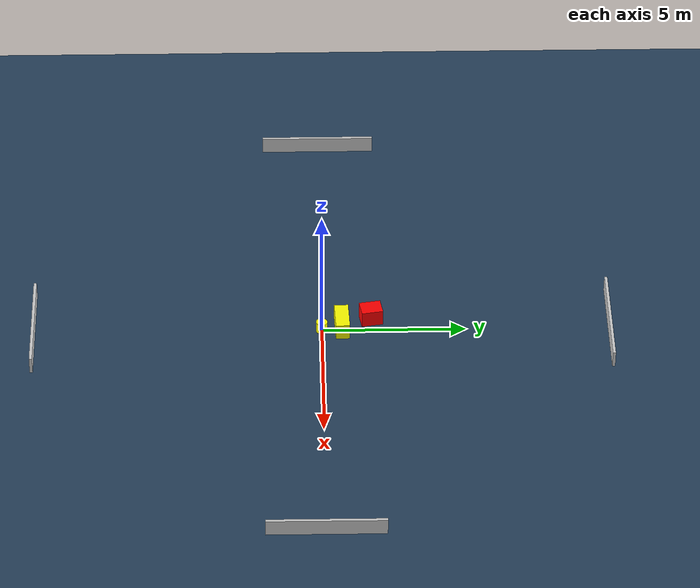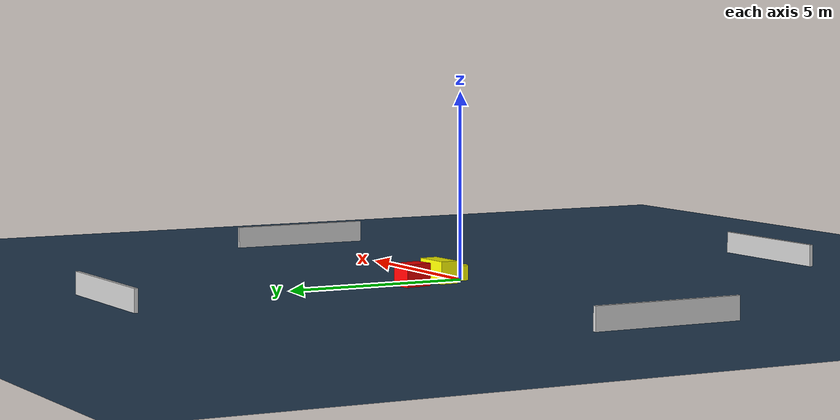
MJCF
<?xml version="1.0" ?>
<mujoco model="generated_environment">
  <option timestep="0.01" integrator="RK4" cone="elliptic"/>
  <default>
    <geom density="1"/>
  </default>
  <asset>
    <texture builtin="gradient" height="3072" name="skybox" rgb1="0.3 0.5 0.7" rgb2="0 0 0" type="skybox" width="512"/>
    <texture builtin="checker" height="300" name="groundplane" rgb1="0.2 0.3 0.4" rgb2="0.1 0.2 0.3" type="2d" width="300"/>
    <material name="groundplane" reflectance="0.2" texrepeat="5 5" texture="groundplane"/>
  </asset>
  <worldbody>
    <light dir="0 0 -1" directional="true" pos="0 0 1.5"/>
    <geom condim="3" friction="0.5 0.005 0.001" material="groundplane" name="floor" pos="0 0 0" size="0 0 0.05" type="plane"/>
    <body name="walls">
      <geom name="wall_1" condim="4" pos="-10.0 0.0 0.3" rgba="0.800000011920929 0.800000011920929 0.800000011920929 1.0" size="0.05 2.0 0.3" type="box"/>
      <geom name="wall_2" condim="4" pos="10.0 0.0 0.3" rgba="0.800000011920929 0.800000011920929 0.800000011920929 1.0" size="0.05 2.0 0.3" type="box"/>
      <geom name="wall_3" condim="4" pos="0.0 -10.0 0.3" rgba="0.800000011920929 0.800000011920929 0.800000011920929 1.0" size="2.0 0.05 0.3" type="box"/>
      <geom name="wall_4" condim="4" pos="0.0 10.0 0.3" rgba="0.800000011920929 0.800000011920929 0.800000011920929 1.0" size="2.0 0.05 0.3" type="box"/>
    </body>
    <body name="robot">
      <joint name="joint_x" type="slide" pos="0 0 0" axis="1 0 0"/>
      <joint name="joint_y" type="slide" pos="0 0 0" axis="0 1 0"/>
      <geom name="robot" type="cylinder" pos="0.0 0.0 0.2" size="0.2 0.2 0.0" mass="5.0" friction="1.0 0.005 0.0001" condim="4" rgba="1.0 1.0 0.0 1.0"/>
    </body>
    <body name="obstacle_1_movable">
      <geom name="obstacle_1_movable" condim="4" pos="-0.10401184151593613 0.704963440956788 0.3" euler="0 0 182.413737087301" friction="0.0 0.005 0.001" rgba="1.0 1.0 0.0 1.0" size="0.5454625270269116 0.24282283314473632 0.3" type="box" mass="0.1"/>
      <joint type="free"/>
    </body>
    <body name="obstacle_2_static">
      <geom name="obstacle_2_static" condim="4" pos="-0.5191787239902964 1.7206464854554806 0.3" euler="0 0 279.4609128619706" friction="0.0 0.005 0.001" rgba="1.0 0.0 0.0 1.0" size="0.37204748099481144 0.29061544879533735 0.3" type="box"/>
    </body>
  </worldbody>
  <actuator>
    <motor name="actuator_x" joint="joint_x" gear="1" ctrlrange="-1 1"/>
    <motor name="actuator_y" joint="joint_y" gear="1" ctrlrange="-1 1"/>
  </actuator>
</mujoco>
